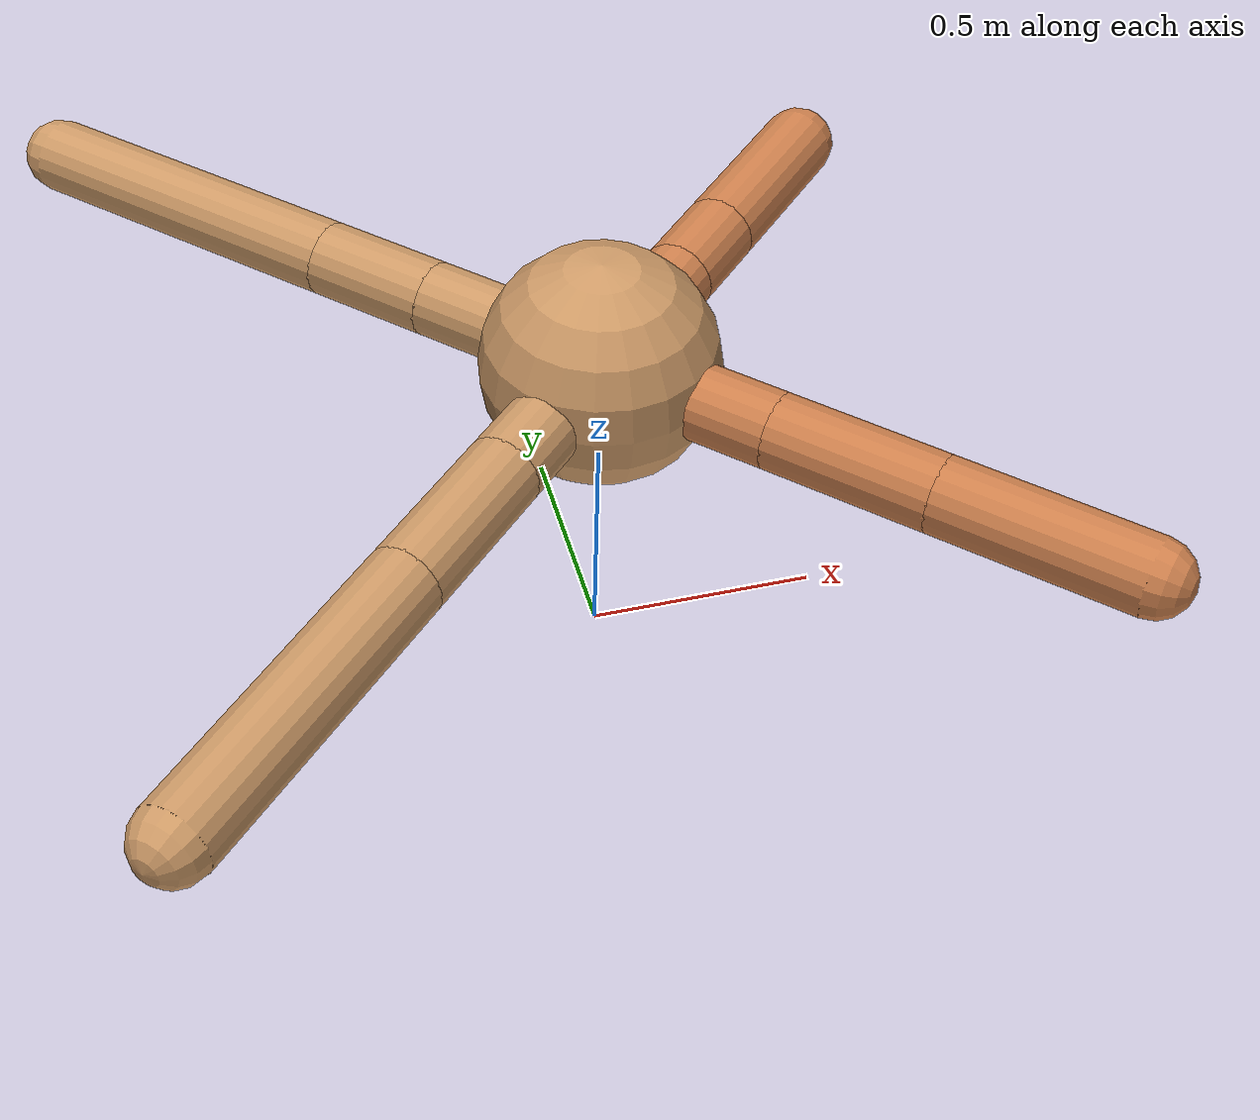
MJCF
<mujoco model="ant">
  <compiler angle="degree" coordinate="local" inertiafromgeom="true" />
  <option integrator="RK4" timestep="0.01" />
  <custom>
    <numeric data="0.0 0.0 0.55 1.0 0.0 0.0 0.0 0.0 1.0 0.0 -1.0 0.0 -1.0 0.0 1.0" name="init_qpos" />
  </custom>
  <default>
    <joint armature="1" damping="1" limited="true" />
    <geom conaffinity="0" condim="3" density="5.0" friction="1.5 0.1 0.1" margin="0.01" rgba="0.8 0.6 0.4 1" />
  </default>
  <worldbody>
    <body name="torso" pos="0 0 0.75">
      <geom name="torso_geom" pos="0 0 0" size="0.25" type="sphere" />

      <body name="front_left_leg" pos="0 0 0">
        <geom fromto="0.0 0.0 0.0 0.2316436137339684 0.2316436137339684 0.0" name="aux_1_geom" size="0.08" type="capsule" rgba=".8 .5 .3 1" />
        <body name="aux_1" pos="0.2316436137339684 0.2316436137339684 0.0">
          <joint axis="0 0 1" name="hip_1" pos="0.0 0.0 0.0" range="-40 40" type="hinge" />
          <geom fromto="0.0 0.0 0.0 0.1315119800748753 0.1315119800748753 0.0" name="left_leg_geom" size="0.08" type="capsule" rgba=".8 .5 .3 1" />
          <body pos="0.1315119800748753 0.1315119800748753 0.0" name="front_left_foot">
            <joint axis="-1 1 0" name="ankle_1" pos="0.0 0.0 0.0" range="30 100" type="hinge" />
            <geom fromto="0.0 0.0 0.0 0.27214953591385227 0.27214953591385227 0.0" name="left_ankle_geom" size="0.08" type="capsule" rgba=".8 .5 .3 1" />
          </body>
        </body>
      </body>
      <body name="front_right_leg" pos="0 0 0">
        <geom fromto="0.0 0.0 0.0 -0.2853928240136822 0.2853928240136822 0.0" name="aux_2_geom" size="0.08" type="capsule" />
        <body name="aux_2" pos="-0.2853928240136822 0.2853928240136822 0.0">
          <joint axis="0 0 1" name="hip_2" pos="0.0 0.0 0.0" range="-40 40" type="hinge" />
          <geom fromto="0.0 0.0 0.0 -0.18723118104023773 0.18723118104023773 0.0" name="right_leg_geom" size="0.08" type="capsule" />
          <body pos="-0.18723118104023773 0.18723118104023773 0.0" name="front_right_foot">
            <joint axis="1 1 0" name="ankle_2" pos="0.0 0.0 0.0" range="-100 -30" type="hinge" />
            <geom fromto="0.0 0.0 0.0 -0.5212416253009106 0.5212416253009106 0.0" name="right_ankle_geom" size="0.08" type="capsule" />
          </body>
        </body>
      </body>
      <body name="left_back_leg" pos="0 0 0">
        <geom fromto="0.0 0.0 0.0 -0.26125511566066556 -0.26125511566066556 0.0" name="aux_3_geom" size="0.08" type="capsule" />
        <body name="aux_3" pos="-0.26125511566066556 -0.26125511566066556 0.0">
          <joint axis="0 0 1" name="hip_3" pos="0.0 0.0 0.0" range="-40 40" type="hinge" />
          <geom fromto="0.0 0.0 0.0 -0.24085581142357332 -0.24085581142357332 0.0" name="back_leg_geom" size="0.08" type="capsule" />
          <body pos="-0.24085581142357332 -0.24085581142357332 0.0" name="left_back_foot">
            <joint axis="-1 1 0" name="ankle_3" pos="0.0 0.0 0.0" range="-100 -30" type="hinge" />
            <geom fromto="0.0 0.0 0.0 -0.4806551627033985 -0.4806551627033985 0.0" name="third_ankle_geom" size="0.08" type="capsule" />
          </body>
        </body>
      </body>
      <body name="right_back_leg" pos="0 0 0">
        <geom fromto="0.0 0.0 0.0 0.27985685017702877 -0.27985685017702877 0.0" name="aux_4_geom" size="0.08" type="capsule" rgba=".8 .5 .3 1" />
        <body name="aux_4" pos="0.27985685017702877 -0.27985685017702877 0.0">
          <joint axis="0 0 1" name="hip_4" pos="0.0 0.0 0.0" range="-40 40" type="hinge" />
          <geom fromto="0.0 0.0 0.0 0.2445116944447804 -0.2445116944447804 0.0" name="rightback_leg_geom" size="0.08" type="capsule" rgba=".8 .5 .3 1" />
          <body pos="0.2445116944447804 -0.2445116944447804 0.0" name="right_back_foot">
            <joint axis="1 1 0" name="ankle_4" pos="0.0 0.0 0.0" range="30 100" type="hinge" />
            <geom fromto="0.0 0.0 0.0 0.3003114340179597 -0.3003114340179597 0.0" name="fourth_ankle_geom" size="0.08" type="capsule" rgba=".8 .5 .3 1" />
          </body>
        </body>
      </body>
    </body>
  </worldbody>
  <actuator>
    <motor ctrllimited="true" ctrlrange="-1.0 1.0" joint="hip_4" gear="150" />
    <motor ctrllimited="true" ctrlrange="-1.0 1.0" joint="ankle_4" gear="150" />
    <motor ctrllimited="true" ctrlrange="-1.0 1.0" joint="hip_1" gear="150" />
    <motor ctrllimited="true" ctrlrange="-1.0 1.0" joint="ankle_1" gear="150" />
    <motor ctrllimited="true" ctrlrange="-1.0 1.0" joint="hip_2" gear="150" />
    <motor ctrllimited="true" ctrlrange="-1.0 1.0" joint="ankle_2" gear="150" />
    <motor ctrllimited="true" ctrlrange="-1.0 1.0" joint="hip_3" gear="150" />
    <motor ctrllimited="true" ctrlrange="-1.0 1.0" joint="ankle_3" gear="150" />
  </actuator>
</mujoco>
